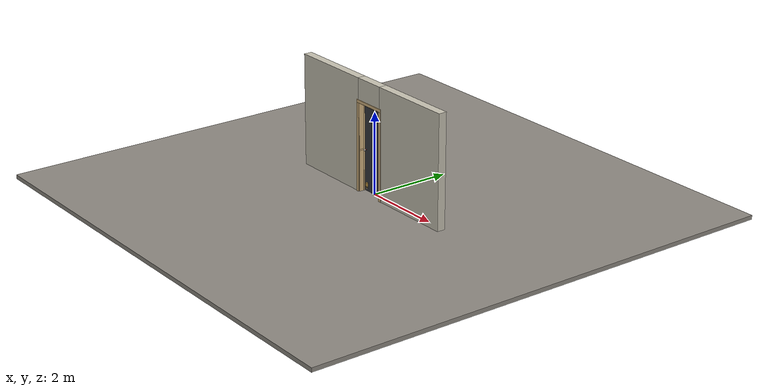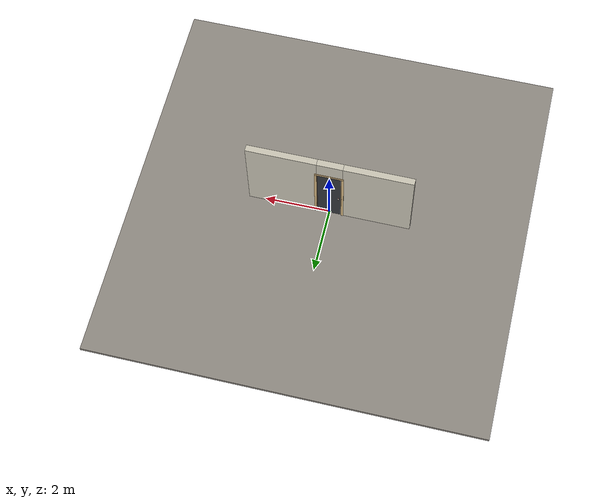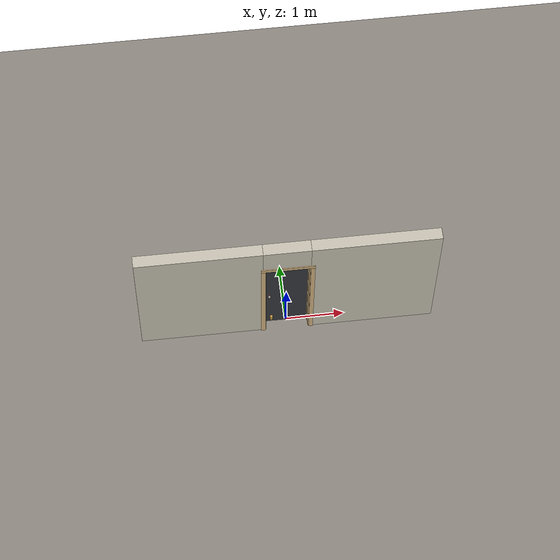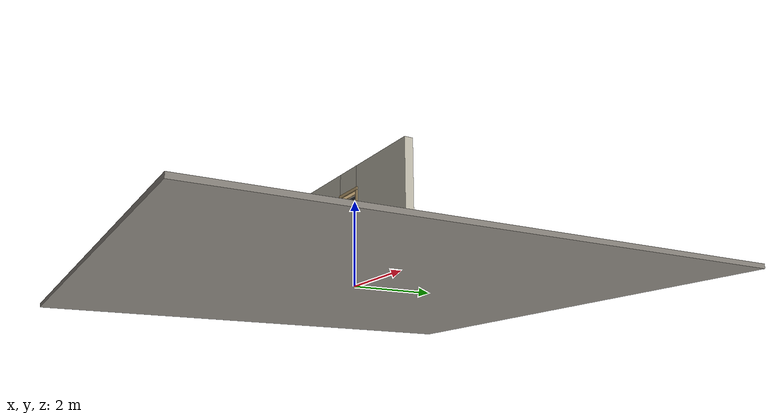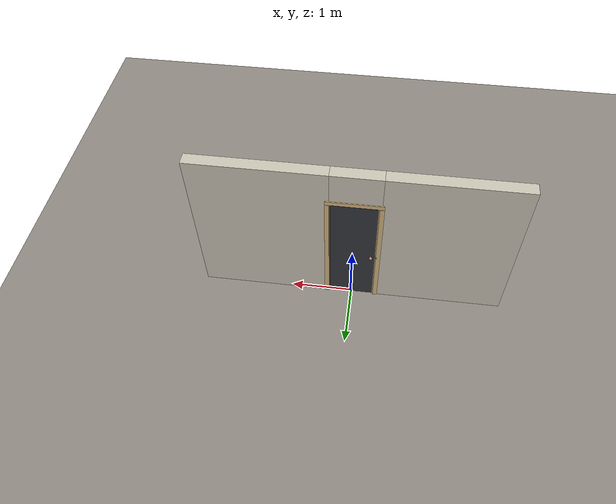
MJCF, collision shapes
<?xml version="1.0" ?>
<mujoco model="db0376_swing_single_full">
  <compiler angle="radian" meshdir="../../hardware" texturedir="../../textures" autolimits="true" inertiafromgeom="false"/>
  <option timestep="0.002" integrator="implicitfast" cone="elliptic" impratio="10" noslip_iterations="3">
    <flag multiccd="enable"/>
  </option>
  <size memory="16M"/>
  <default>
    <geom condim="4" solref="0.005 1" solimp="0.95 0.99 0.001"/>
    <joint solreflimit="0.005 1" solimplimit="0.95 0.99 0.001"/>
    <tendon solreflimit="0.005 1"/>
    <equality solref="0.002 1"/>
  </default>
  <visual>
    <headlight ambient="0.4 0.4 0.4" diffuse="0.7 0.7 0.7" specular="0.2 0.2 0.2"/>
    <quality shadowsize="4096"/>
    <map znear="0.01" zfar="60"/>
  </visual>
  <asset>
    <mesh name="coat_hook_d622d37ad0" file="coat_hook_d622d37ad0.obj"/>
    <mesh name="hinge_7678ceaa91" file="hinge_7678ceaa91.obj"/>
    <mesh name="hinge_jamb_24fdb06e8a" file="hinge_jamb_24fdb06e8a.obj"/>
    <mesh name="knob_248d825e64" file="knob_248d825e64.obj"/>
    <mesh name="knob_d1888f6f03" file="knob_d1888f6f03.obj"/>
    <material name="mat_floor" rgba="0.55 0.53 0.5 1" specular="0.2" shininess="0.15" reflectance="0"/>
    <material name="mat_wall" rgba="0.78 0.76 0.7 1" specular="0.2" shininess="0.1" reflectance="0"/>
    <material name="mat_hinge" rgba="0.55 0.56 0.58 1" specular="0.8" shininess="0.55" reflectance="0.4"/>
    <material name="mat_leaf" rgba="0.2 0.21 0.23 1" specular="0.2" shininess="0.3" reflectance="0"/>
    <material name="mat_op_nickel_satin" rgba="0.72 0.7 0.66 1" specular="0.8" shininess="0.65" reflectance="0.4"/>
    <material name="mat_trim" rgba="0.85 0.66 0.3 1" specular="0.8" shininess="0.75" reflectance="0.4"/>
    <material name="mat_bolt" rgba="0.85 0.66 0.3 1" specular="0.8" shininess="0.75" reflectance="0.4"/>
    <material name="mat_frame" rgba="0.82 0.7 0.5 1" specular="0.2" shininess="0.45" reflectance="0"/>
    <material name="mat_seal" rgba="0.1 0.1 0.1 1" specular="0.2" shininess="0.1" reflectance="0"/>
    <material name="mat_kickdown" rgba="0.85 0.66 0.3 1" specular="0.8" shininess="0.75" reflectance="0.4"/>
    <material name="mat_kickdown_pad" rgba="0.92 0.92 0.9 1" specular="0.2" shininess="0.6" reflectance="0"/>
    <material name="mat_hook" rgba="0.9 0.9 0.92 1" specular="0.8" shininess="0.9" reflectance="0.4"/>
    <texture name="skybox" type="skybox" builtin="gradient" rgb1="0.6 0.7 0.85" rgb2="0.9 0.92 0.95" width="256" height="256"/>
  </asset>
  <worldbody>
    <light name="sun" pos="1.5 -2.5 4" dir="-0.3 0.5 -0.8" directional="true" diffuse="0.8 0.8 0.8" specular="0.3 0.3 0.3" castshadow="true"/>
    <light name="fill" pos="-1.5 2.5 3" dir="0.3 -0.5 -0.7" directional="true" diffuse="0.35 0.35 0.4" castshadow="false"/>
    <camera name="robot_view" pos="0 -2.708813 1.812087" xyaxes="1 0 0 0 0.26963 0.962964" fovy="52"/>
    <camera name="far_view" pos="0 2.566812 1.812087" xyaxes="-1 0 0 0 -0.26963 0.962964" fovy="52"/>
    <camera name="iso" pos="-2.004737 -2.286763 2.234138" xyaxes="0.741536 -0.670913 0 0.242917 0.268487 0.932151" fovy="46"/>
    <camera name="detail_handle" pos="-0.1145 -0.8685 1.296" xyaxes="0.97561 0.219512 0 -0.070934 0.315262 0.94635" fovy="38"/>
    <geom name="floor" type="box" size="6 6 0.05" pos="0 0 -0.05" material="mat_floor" group="0" contype="1" conaffinity="1" friction="0.8 0.005 0.0001" density="2400"/>
    <geom name="wall_left" type="box" size="1.04575 0.1 1.3735" pos="-1.45425 -0.071 1.3735" material="mat_wall" group="0" contype="1" conaffinity="1" friction="0.6 0.005 0.0001" density="800"/>
    <geom name="wall_right" type="box" size="1.06075 0.1 1.3735" pos="1.43925 -0.071 1.3735" material="mat_wall" group="0" contype="1" conaffinity="1" friction="0.6 0.005 0.0001" density="800"/>
    <geom name="wall_header" type="box" size="0.3935 0.1 0.2755" pos="-0.015 -0.071 2.4715" material="mat_wall" group="0" contype="1" conaffinity="1" friction="0.6 0.005 0.0001" density="800"/>
    <geom name="hinge_0_jamb" type="mesh" mesh="hinge_jamb_24fdb06e8a" pos="0.3565 0.029 0.259" quat="0 0 0 1" material="mat_hinge" group="1" contype="0" conaffinity="0" density="7850"/>
    <geom name="hinge_1_jamb" type="mesh" mesh="hinge_jamb_24fdb06e8a" pos="0.3565 0.029 1.0708" quat="0 0 0 1" material="mat_hinge" group="1" contype="0" conaffinity="0" density="7850"/>
    <geom name="hinge_2_jamb" type="mesh" mesh="hinge_jamb_24fdb06e8a" pos="0.3565 0.029 1.9526" quat="0 0 0 1" material="mat_hinge" group="1" contype="0" conaffinity="0" density="7850"/>
    <geom name="jamb_hinge" type="box" size="0.0095 0.1 1.0735" pos="0.369 -0.071 1.0735" material="mat_frame" group="0" contype="1" conaffinity="1" friction="0.6 0.005 0.0001" density="400"/>
    <geom name="strike_1016_wall_n" type="box" size="0.0245 0.081575 0.0167" pos="-0.384 -0.089425 1.016" material="mat_frame" group="0" contype="1" conaffinity="1" friction="0.6 0.005 0.0001" density="400"/>
    <geom name="strike_1016_wall_p" type="box" size="0.0245 0.008 0.0167" pos="-0.384 0.01585 1.016" material="mat_frame" group="0" contype="1" conaffinity="1" friction="0.6 0.005 0.0001" density="400"/>
    <geom name="strike_1016_ramp" type="box" size="0.0245 0.01649 0.0167" pos="-0.388636 0.028673 1.016" quat="0.977148 0 0 0.212558" material="mat_frame" group="0" contype="1" conaffinity="1" friction="0.12 0.005 0.0001" density="400"/>
    <geom name="strike_1016_back" type="box" size="0.01615 0.00785 0.0167" pos="-0.39235 0 1.016" material="mat_frame" group="0" contype="1" conaffinity="1" friction="0.6 0.005 0.0001" density="400"/>
    <geom name="jamb_strike_0" type="box" size="0.0245 0.1 0.49965" pos="-0.384 -0.071 0.49965" material="mat_frame" group="0" contype="1" conaffinity="1" friction="0.6 0.005 0.0001" density="400"/>
    <geom name="jamb_strike_1" type="box" size="0.0245 0.1 0.55715" pos="-0.384 -0.071 1.58985" material="mat_frame" group="0" contype="1" conaffinity="1" friction="0.6 0.005 0.0001" density="400"/>
    <geom name="jamb_head" type="box" size="0.3935 0.1 0.0095" pos="-0.015 -0.071 2.1565" material="mat_frame" group="0" contype="1" conaffinity="1" friction="0.6 0.005 0.0001" density="400"/>
    <geom name="head_stud" type="box" size="0.3935 0.1 0.015" pos="-0.015 -0.071 2.181" material="mat_wall" group="0" contype="1" conaffinity="1" friction="0.6 0.005 0.0001" density="500"/>
    <geom name="stop_hinge" type="box" size="0.0055 0.016 1.0735" pos="0.354 -0.0385 1.0735" material="mat_frame" group="0" contype="1" conaffinity="1" friction="0.6 0.005 0.0001" density="400"/>
    <geom name="stop_strike" type="box" size="0.0055 0.016 1.0735" pos="-0.354 -0.0385 1.0735" material="mat_frame" group="0" contype="1" conaffinity="1" friction="0.6 0.005 0.0001" density="400"/>
    <geom name="stop_head" type="box" size="0.3595 0.016 0.0055" pos="0 -0.0385 2.1415" material="mat_frame" group="0" contype="1" conaffinity="1" friction="0.6 0.005 0.0001" density="400"/>
    <geom name="seal_hinge" type="box" size="0.004 0.0015 1.0735" pos="0.3565 -0.0235 1.0735" material="mat_seal" group="1" contype="0" conaffinity="0" density="1100"/>
    <geom name="seal_strike" type="box" size="0.004 0.0015 1.0735" pos="-0.3565 -0.0235 1.0735" material="mat_seal" group="1" contype="0" conaffinity="0" density="1100"/>
    <geom name="seal_head" type="box" size="0.3395 0.0015 0.008" pos="0 -0.0235 2.135" material="mat_seal" group="1" contype="0" conaffinity="0" density="1100"/>
    <geom name="casing_l_n" type="box" size="0.035 0.008 1.083" pos="-0.4085 -0.179 1.0735" material="mat_frame" group="2" contype="0" conaffinity="0" density="400"/>
    <geom name="casing_r_n" type="box" size="0.035 0.008 1.083" pos="0.4085 -0.179 1.0735" material="mat_frame" group="2" contype="0" conaffinity="0" density="400"/>
    <geom name="casing_h_n" type="box" size="0.4435 0.008 0.035" pos="0 -0.179 2.196" material="mat_frame" group="2" contype="0" conaffinity="0" density="400"/>
    <geom name="casing_l_p" type="box" size="0.035 0.008 1.083" pos="-0.4085 0.037 1.0735" material="mat_frame" group="2" contype="0" conaffinity="0" density="400"/>
    <geom name="casing_r_p" type="box" size="0.035 0.008 1.083" pos="0.4085 0.037 1.0735" material="mat_frame" group="2" contype="0" conaffinity="0" density="400"/>
    <geom name="casing_h_p" type="box" size="0.4435 0.008 0.035" pos="0 0.037 2.196" material="mat_frame" group="2" contype="0" conaffinity="0" density="400"/>
    <site name="approach_point" pos="0 -1.5 0" quat="1 0 0 0" size="0.05" rgba="0.2 0.9 0.2 0.5" group="4"/>
    <site name="goal_point" pos="0 1.5 0" quat="1 0 0 0" size="0.05" rgba="0.2 0.9 0.2 0.5" group="4"/>
    <site name="door_plane_center" pos="0 0 1.0735" quat="1 0 0 0" size="0.02" rgba="0.2 0.9 0.2 0.5" group="4"/>
    <body name="leaf_riser" pos="0.3595 0 0">
      <inertial pos="-0.003 0.029 0.055" mass="0.174012" quat="-0.5 0.5 0.5 0.5" diaginertia="0.000017053 0.00002732 0.00002732"/>
      <joint name="leaf_rise" type="slide" axis="0 0 1" limited="true" range="0 0.0176" damping="1" armature="0.5"/>
      <geom name="leaf_riser_marker" type="cylinder" size="0.014 0.018" pos="-0.003 0.029 0.055" material="mat_hinge" group="1" contype="0" conaffinity="0" density="7850"/>
      <body name="leaf" pos="0 0 0">
        <inertial pos="-0.360844 -0.000636 1.04907" mass="50.66996" quat="0.505467 -0.503064 -0.49802 -0.493362" diaginertia="2.217332563 19.684160194 21.881435619"/>
        <joint name="leaf_hinge" type="hinge" axis="0 0 -1" pos="-0.003 0.029 0" limited="true" range="0 2.268928" solreflimit="0.02 1" damping="0.14849" frictionloss="1.372858" armature="0.02"/>
        <geom name="leaf_slab" type="box" size="0.3555 0.022 1.0618" pos="-0.3585 0 1.0708" material="mat_leaf" group="0" contype="1" conaffinity="1" friction="0.4 0.005 0.0001" density="1"/>
        <geom name="hinge_0" type="mesh" mesh="hinge_7678ceaa91" pos="-0.003 0.029 0.259" quat="0 0 0 1" material="mat_hinge" group="1" contype="0" conaffinity="0" density="7850"/>
        <geom name="hinge_1" type="mesh" mesh="hinge_7678ceaa91" pos="-0.003 0.029 1.0708" quat="0 0 0 1" material="mat_hinge" group="1" contype="0" conaffinity="0" density="7850"/>
        <geom name="hinge_2" type="mesh" mesh="hinge_7678ceaa91" pos="-0.003 0.029 1.9526" quat="0 0 0 1" material="mat_hinge" group="1" contype="0" conaffinity="0" density="7850"/>
        <geom name="leaf_latch_bolt_faceplate" type="box" size="0.0006 0.01235 0.0267" pos="-0.7134 0 1.016" material="mat_bolt" group="1" contype="0" conaffinity="0" density="8500"/>
        <geom name="kickdown_housing" type="box" size="0.022 0.016 0.045" pos="-0.614 -0.038 0.169" material="mat_kickdown" group="2" contype="0" conaffinity="0" density="8500"/>
        <geom name="kickdown_arm" type="box" size="0.012 0.006 0.045" pos="-0.614 -0.034 0.104" material="mat_kickdown" group="2" contype="0" conaffinity="0" density="8500"/>
        <geom name="kickdown_pad" type="cylinder" size="0.014 0.006" pos="-0.614 -0.034 0.061" material="mat_kickdown_pad" group="2" contype="0" conaffinity="0" density="1200"/>
        <geom name="coat_hook" type="mesh" mesh="coat_hook_d622d37ad0" pos="-0.3585 0.022 1.7826" quat="0 0 0.707107 0.707107" material="mat_hook" group="2" contype="0" conaffinity="0" density="7000"/>
        <site name="leaf_edge_mid" pos="-0.714 0 1.0618" quat="1 0 0 0" size="0.02" rgba="0.2 0.9 0.2 0.5" group="4"/>
        <body name="leaf_handle" pos="-0.654 0 1.016">
          <inertial pos="0 -0.000225 0" mass="1.154652" quat="0.5 0.5 0.5 0.5" diaginertia="0.000312546 0.004289529 0.004289529"/>
          <joint name="leaf_handle_hinge" type="hinge" axis="0 1 0" limited="true" range="0 0.87" damping="0.143614" frictionloss="0.038" stiffness="0.5" springref="-0.5" armature="0.01"/>
          <geom name="leaf_handle_spindle" type="cylinder" size="0.006 0.03" pos="0 0 0" quat="0.707107 -0.707107 0 0" material="mat_op_nickel_satin" group="1" contype="0" conaffinity="0" density="7850"/>
          <geom name="leaf_handle_knob_n" type="mesh" mesh="knob_248d825e64" pos="0 -0.022 0" quat="0 0 -0.707107 0.707107" material="mat_op_nickel_satin" group="1" contype="0" conaffinity="0" density="3000"/>
          <geom name="leaf_handle_knob_col_n" type="sphere" size="0.0243" pos="0 -0.0685 0" material="mat_op_nickel_satin" group="0" contype="1" conaffinity="1" friction="0.9 0.01 0.0001" density="3000"/>
          <geom name="leaf_handle_knob_neck_n" type="cylinder" size="0.011 0.012" pos="0 -0.034 0" quat="0.707107 -0.707107 0 0" material="mat_op_nickel_satin" group="3" contype="1" conaffinity="1" rgba="0.8 0.3 0.3 0.25" friction="0.6 0.005 0.0001" density="3000"/>
          <geom name="leaf_handle_knob_p" type="mesh" mesh="knob_d1888f6f03" pos="0 0.022 0" quat="0 0 0.707107 0.707107" material="mat_op_nickel_satin" group="1" contype="0" conaffinity="0" density="3000"/>
          <geom name="leaf_handle_knob_col_p" type="sphere" size="0.0243" pos="0 0.0685 0" material="mat_op_nickel_satin" group="0" contype="1" conaffinity="1" friction="0.9 0.01 0.0001" density="3000"/>
          <geom name="leaf_handle_knob_neck_p" type="cylinder" size="0.011 0.012" pos="0 0.034 0" quat="0.707107 -0.707107 0 0" material="mat_op_nickel_satin" group="3" contype="1" conaffinity="1" rgba="0.8 0.3 0.3 0.25" friction="0.6 0.005 0.0001" density="3000"/>
          <site name="leaf_handle_grip_n" pos="0 -0.0685 0" quat="1 0 0 0" size="0.012" rgba="0.2 0.9 0.2 0.5" group="4"/>
          <site name="leaf_handle_grip_p" pos="0 0.0685 0" quat="1 0 0 0" size="0.012" rgba="0.2 0.9 0.2 0.5" group="4"/>
        </body>
        <body name="leaf_latch_bolt" pos="-0.714 0 1.016">
          <inertial pos="0.00865 0 0" mass="0.041419" quat="0.92388 0.382683 0 0" diaginertia="0.000000798 0.000005598 0.000005598"/>
          <joint name="leaf_latch_bolt_slide" type="slide" axis="1 0 0" limited="true" range="0 0.0127" damping="2" frictionloss="0.3" stiffness="300" springref="-0.008333" armature="0.1"/>
          <geom name="leaf_latch_bolt_capsule" type="capsule" size="0.00635 0.015" pos="0.00865 0 0" quat="0.707107 0 -0.707107 0" material="mat_bolt" group="0" contype="1" conaffinity="1" friction="0.2 0.005 0.0001" density="8500"/>
        </body>
      </body>
    </body>
  </worldbody>
  <tendon>
    <fixed name="leaf_latch_bolt_coupling" limited="true" range="0 10">
      <joint joint="leaf_latch_bolt_slide" coef="1"/>
      <joint joint="leaf_handle_hinge" coef="-0.015679"/>
    </fixed>
  </tendon>
  <equality>
    <joint name="leaf_rise_couple" joint1="leaf_rise" joint2="leaf_hinge" polycoef="0 0.005093 0 0 0" active="true"/>
  </equality>
  <sensor>
    <jointpos name="leaf_hinge_pos" joint="leaf_hinge"/>
    <jointvel name="leaf_hinge_vel" joint="leaf_hinge"/>
    <jointpos name="leaf_handle_hinge_pos" joint="leaf_handle_hinge"/>
    <jointvel name="leaf_handle_hinge_vel" joint="leaf_handle_hinge"/>
    <jointpos name="leaf_latch_bolt_slide_pos" joint="leaf_latch_bolt_slide"/>
    <jointvel name="leaf_latch_bolt_slide_vel" joint="leaf_latch_bolt_slide"/>
  </sensor>
</mujoco>
